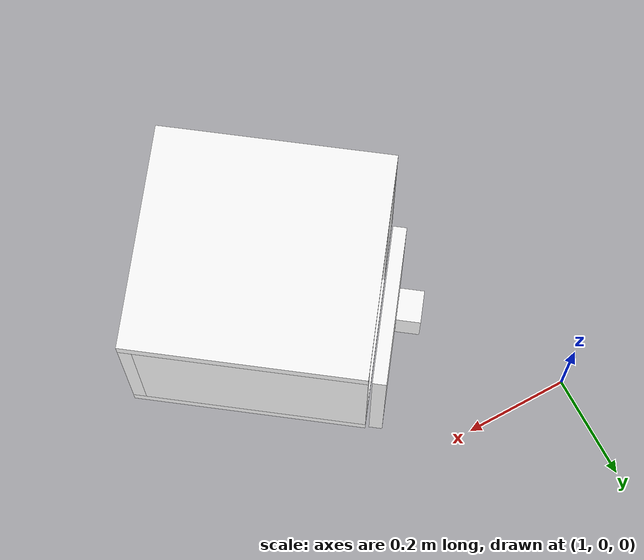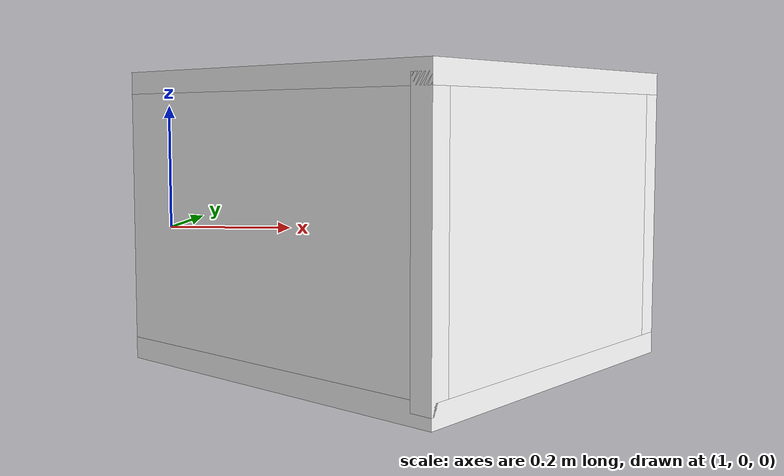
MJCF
<mujoco model="cabinet">
    <compiler angle="radian" eulerseq='zxy' />
    <option gravity = "0 0 0" />
    <option>
        <flag contact = "disable"/>
    </option>
    <statistic	extent="1.0" center="0.0 0.0 0.0"/>
    <visual>
        <map fogstart="3" fogend="5" force="0.1" znear=" 0.100000 " zfar=" 12.000000 "/>
    </visual>
    <size njmax="500" nconmax="100" />
    <actuator>
        <velocity joint="bottom_left_hinge" name="viva_revolution" kv='10'></velocity>
    </actuator>
    <asset>
        <texture builtin="flat" name="tabletex" height="32" width="32" rgb1="1 1 1" type="cube"></texture>
        <texture builtin="flat" name="objtex" height="32" width="32" rgb1="1 1 1" type="cube"></texture>
        <texture builtin="flat" name="handletex" height="32" width="32" rgb1="1 1 1" type="cube"></texture>
        <texture builtin="flat" name="wallpaper" height="32" width="32" rgb1="1 1 1" type="cube"></texture>
        <texture builtin="flat" name="kp" height="32" width="32" rgb1="1 1 1" type="cube"></texture>
        <material name="geomTable" shininess="0.03" specular="0.75" texture="tabletex"></material>
        <material name="geomObj" shininess="0.03" specular="0.75" texture="objtex"></material>
        <material name="geomHandle" shininess="0.03" specular="0.75" texture="handletex"></material>
        <material name="bg" shininess="0.03" specular="0.75" texture="wallpaper"></material>
        <material name="geomKeypad" shininess="0.03" specular="0.75" texture="kp"></material>
    </asset>
    <worldbody>
        <body name="cabinet_bottom" pos= " 1.409446 -0.432902 -0.096873 "  quat= " 0.311626 0.000000 0.000000 0.950205" >
            <inertial pos="0 0 0" mass="1" diaginertia="1 1 1" />
            <geom size= " 0.226786 0.217510 0.012781 "  type="box" material="geomObj" name="b"/>
            <body name="cabinet_left" pos= " 0.000000 -0.204728 0.158071 " >
                <inertial pos="0 0 0" mass="1" diaginertia="1 1 1" />
                <geom size= " 0.226786 0.012781 0.158071 "  type="box" material="geomObj" name="c" />
            </body>
            <body name="cabinet_right" pos= " 0.000000 0.204728 0.158071 " >
                <inertial pos="0 0 0" mass="1" diaginertia="1 1 1" />
                <geom size= " 0.226786 0.012781 0.158071 "  type="box" material="geomObj" name="d" />
            </body>
            <body name="cabinet_top" pos= " 0.000000 0.000000 0.316142 " >
                <inertial pos="0 0 0" mass="1" diaginertia="1 1 1" />
                <geom size= " 0.226786 0.217510 0.012781 "  type="box" material="geomObj" name="e"/>
            </body>
            <body name="cabinet_back" pos= " -0.214004 0.000000 0.158071 "  >
                <inertial pos="0 0 0" mass="1" diaginertia="1 1 1" />
                <geom size= " 0.012781 0.217510 0.158071 "  type="box" material="geomObj" name="f" />
            </body>
            <body name="cabinet_keypad" pos= " 0.012781 0.149217 0.158071 " >
                <inertial pos="0 0 0" mass="1" diaginertia="1 1 1" />
                <geom size= " 0.214004 0.067293 0.145290 "  type="box" material="geomKeypad" name="keypizzlemynizzle" />
            </body>
            <body name="cabinet_left_hinge" pos= " 0.226786 -0.067293 0.000000 " >
                <inertial pos= " 0.020000 0.000000 0.158071 "  mass="1" diaginertia="1 1 1" />
                <joint name="bottom_left_hinge" type="hinge" pos="0 0 0" axis="0 1 0" limited="true" range= "0 2.3"  />
                <geom size= " 0.012781 0.150217 0.158071 "  pos= " 0.020000 0.000000 0.158071 "  type="box" material="geomObj" name="g"/>
                <body name="handle_link" pos= " 0.056696 0.000000 0.290580 " >
                    <inertial pos="0 0 0" mass="1" diaginertia="1 1 1" />
                    <geom size= " 0.022157 0.030182 0.035726 "  type="box" material="geomHandle" name="h"/>
                </body>
            </body>
        </body>
        <body name="external_camera_body_0" pos="0.0 0 0.00">
            <camera euler="-1.57 1.57 0.0" fovy=" 54.280851 " name="external_camera_0" pos="0.0 0 0"></camera>
            <inertial pos= " 0.00 0.0 0.000000 " mass="1" diaginertia="1 1 1" />
            <joint name="cam_j" pos="0.0 0 0" axis = "1 0 0" type="free" />
        </body>
    </worldbody>
</mujoco>
